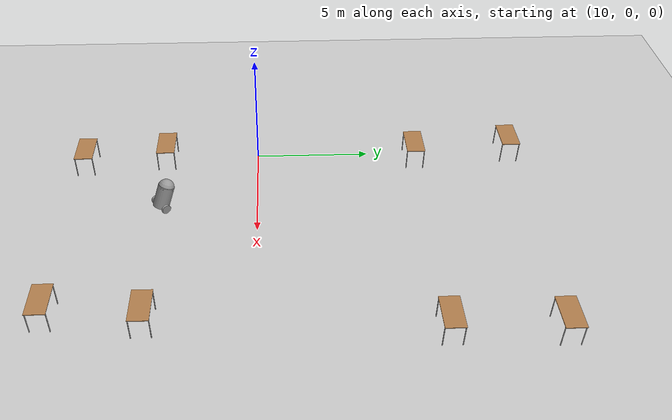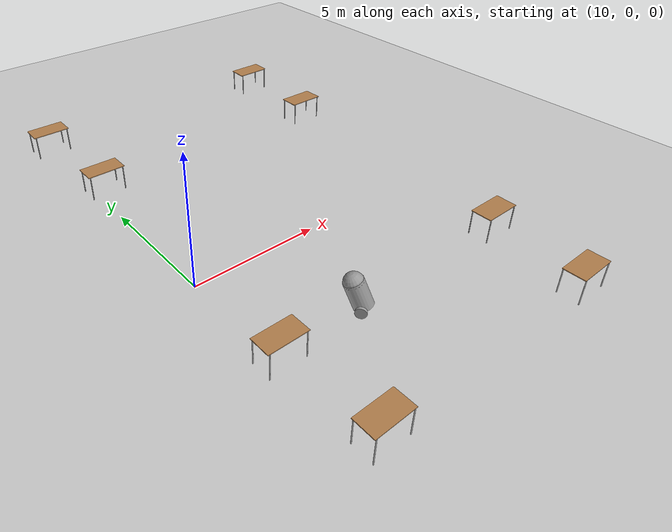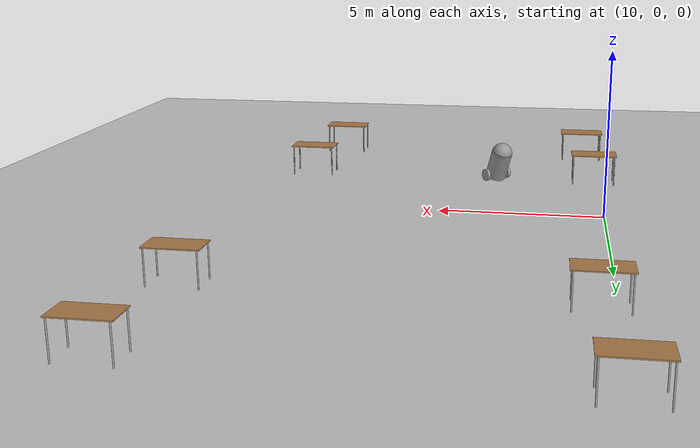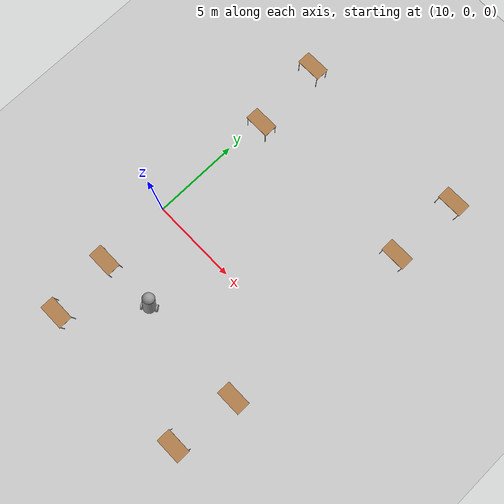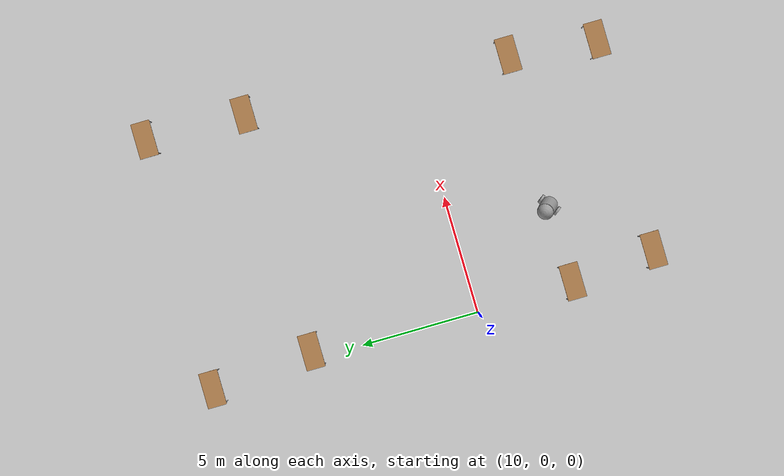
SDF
<sdf version="1.6">
 <world name="default">
  <model name="ground_plane">
   <static>1</static>
   <link name="link">
    <collision name="collision">
     <geometry><plane><normal>0 0 1</normal><size>100 100</size></plane></geometry>
     <surface><friction><ode><mu>100</mu><mu2>50</mu2></ode></friction></surface>
    </collision>
    <visual name="visual">
     <cast_shadows>0</cast_shadows>
     <geometry><plane><normal>0 0 1</normal><size>100 100</size></plane></geometry>
     <material>
      <script><uri>file://media/materials/scripts/gazebo.material</uri><name>Gazebo/Grey</name></script>
     </material>
    </visual>
   </link>
  </model>
  <model name="myRobot">
   <link name="link_1">
    <pose>-0 0.005 0.107501 0 -0 0</pose>
    <inertial>
     <mass>1</mass>
     <inertia><ixx>0.145833</ixx><ixy>0</ixy><ixz>0</ixz><iyy>0.145833</iyy><iyz>0</iyz><izz>0.125</izz></inertia>
    </inertial>
    <visual name="visual">
     <geometry><cylinder><radius>0.35</radius><length>1</length></cylinder></geometry>
     <material>
      <lighting>1</lighting>
      <script><uri>file://media/materials/scripts/gazebo.material</uri><name>Gazebo/Grey</name></script>
      <ambient>0.3 0.3 0.3 1</ambient>
      <diffuse>0.7 0.7 0.7 1</diffuse>
      <specular>0.01 0.01 0.01 1</specular>
      <emissive>0 0 0 1</emissive>
      <shader type="vertex"><normal_map>__default__</normal_map></shader>
     </material>
    </visual>
    <collision name="collision">
     <geometry><cylinder><radius>0.35</radius><length>1</length></cylinder></geometry>
     <surface>
      <friction>
       <ode><mu>1</mu><mu2>1</mu2><fdir1>0 0 0</fdir1><slip1>0</slip1><slip2>0</slip2></ode>
       <torsional>
        <coefficient>1</coefficient>
        <patch_radius>0</patch_radius>
        <surface_radius>0</surface_radius>
        <use_patch_radius>1</use_patch_radius>
        <ode><slip>0</slip></ode>
       </torsional>
      </friction>
      <bounce><restitution_coefficient>0</restitution_coefficient><threshold>1e+06</threshold></bounce>
      <contact>
       <collide_without_contact>0</collide_without_contact>
       <collide_without_contact_bitmask>1</collide_without_contact_bitmask>
       <collide_bitmask>1</collide_bitmask>
       <ode>
        <soft_cfm>0</soft_cfm>
        <soft_erp>0.2</soft_erp>
        <kp>1e+13</kp>
        <kd>1</kd>
        <max_vel>0.01</max_vel>
        <min_depth>0</min_depth>
       </ode>
       <bullet>
        <split_impulse>1</split_impulse>
        <split_impulse_penetration_threshold>-0.01</split_impulse_penetration_threshold>
        <soft_cfm>0</soft_cfm>
        <soft_erp>0.2</soft_erp>
        <kp>1e+13</kp>
        <kd>1</kd>
       </bullet>
      </contact>
     </surface>
    </collision>
   </link>
   <link name="link_2">
    <pose>-0 -0.415019 -0.322503 1.5707 -0 0</pose>
    <inertial>
     <mass>1</mass>
     <inertia><ixx>0.145833</ixx><ixy>0</ixy><ixz>0</ixz><iyy>0.145833</iyy><iyz>0</iyz><izz>0.125</izz></inertia>
    </inertial>
    <visual name="visual">
     <geometry><cylinder><radius>0.2</radius><length>0.1</length></cylinder></geometry>
     <material>
      <lighting>1</lighting>
      <script><uri>file://media/materials/scripts/gazebo.material</uri><name>Gazebo/Grey</name></script>
      <ambient>0.3 0.3 0.3 1</ambient>
      <diffuse>0.7 0.7 0.7 1</diffuse>
      <specular>0.01 0.01 0.01 1</specular>
      <emissive>0 0 0 1</emissive>
      <shader type="vertex"><normal_map>__default__</normal_map></shader>
     </material>
    </visual>
    <collision name="collision">
     <geometry><cylinder><radius>0.2</radius><length>0.1</length></cylinder></geometry>
     <surface>
      <friction>
       <ode><mu>1</mu><mu2>1</mu2><fdir1>0 0 0</fdir1><slip1>0</slip1><slip2>0</slip2></ode>
       <torsional>
        <coefficient>1</coefficient>
        <patch_radius>0</patch_radius>
        <surface_radius>0</surface_radius>
        <use_patch_radius>1</use_patch_radius>
        <ode><slip>0</slip></ode>
       </torsional>
      </friction>
      <bounce><restitution_coefficient>0</restitution_coefficient><threshold>1e+06</threshold></bounce>
      <contact>
       <collide_without_contact>0</collide_without_contact>
       <collide_without_contact_bitmask>1</collide_without_contact_bitmask>
       <collide_bitmask>1</collide_bitmask>
       <ode>
        <soft_cfm>0</soft_cfm>
        <soft_erp>0.2</soft_erp>
        <kp>1e+13</kp>
        <kd>1</kd>
        <max_vel>0.01</max_vel>
        <min_depth>0</min_depth>
       </ode>
       <bullet>
        <split_impulse>1</split_impulse>
        <split_impulse_penetration_threshold>-0.01</split_impulse_penetration_threshold>
        <soft_cfm>0</soft_cfm>
        <soft_erp>0.2</soft_erp>
        <kp>1e+13</kp>
        <kd>1</kd>
       </bullet>
      </contact>
     </surface>
    </collision>
   </link>
   <link name="link_2_clone">
    <pose>-0 0.405019 -0.322499 1.5707 -0 0</pose>
    <inertial>
     <mass>1</mass>
     <inertia><ixx>0.145833</ixx><ixy>0</ixy><ixz>0</ixz><iyy>0.145833</iyy><iyz>0</iyz><izz>0.125</izz></inertia>
    </inertial>
    <visual name="visual">
     <geometry><cylinder><radius>0.2</radius><length>0.1</length></cylinder></geometry>
     <material>
      <lighting>1</lighting>
      <script><uri>file://media/materials/scripts/gazebo.material</uri><name>Gazebo/Grey</name></script>
      <ambient>0.3 0.3 0.3 1</ambient>
      <diffuse>0.7 0.7 0.7 1</diffuse>
      <specular>0.01 0.01 0.01 1</specular>
      <emissive>0 0 0 1</emissive>
      <shader type="vertex"><normal_map>__default__</normal_map></shader>
     </material>
    </visual>
    <collision name="collision">
     <geometry><cylinder><radius>0.2</radius><length>0.1</length></cylinder></geometry>
     <surface>
      <friction>
       <ode><mu>1</mu><mu2>1</mu2><fdir1>0 0 0</fdir1><slip1>0</slip1><slip2>0</slip2></ode>
       <torsional>
        <coefficient>1</coefficient>
        <patch_radius>0</patch_radius>
        <surface_radius>0</surface_radius>
        <use_patch_radius>1</use_patch_radius>
        <ode><slip>0</slip></ode>
       </torsional>
      </friction>
      <bounce><restitution_coefficient>0</restitution_coefficient><threshold>1e+06</threshold></bounce>
      <contact>
       <collide_without_contact>0</collide_without_contact>
       <collide_without_contact_bitmask>1</collide_without_contact_bitmask>
       <collide_bitmask>1</collide_bitmask>
       <ode>
        <soft_cfm>0</soft_cfm>
        <soft_erp>0.2</soft_erp>
        <kp>1e+13</kp>
        <kd>1</kd>
        <max_vel>0.01</max_vel>
        <min_depth>0</min_depth>
       </ode>
       <bullet>
        <split_impulse>1</split_impulse>
        <split_impulse_penetration_threshold>-0.01</split_impulse_penetration_threshold>
        <soft_cfm>0</soft_cfm>
        <soft_erp>0.2</soft_erp>
        <kp>1e+13</kp>
        <kd>1</kd>
       </bullet>
      </contact>
     </surface>
    </collision>
   </link>
   <link name="link_3">
    <pose>-0 0.005 0.537501 0 -0 0</pose>
    <inertial>
     <mass>1</mass>
     <inertia><ixx>0.1</ixx><ixy>0</ixy><ixz>0</ixz><iyy>0.1</iyy><iyz>0</iyz><izz>0.1</izz></inertia>
    </inertial>
    <visual name="visual">
     <geometry><sphere><radius>0.35</radius></sphere></geometry>
     <material>
      <lighting>1</lighting>
      <script><uri>file://media/materials/scripts/gazebo.material</uri><name>Gazebo/Grey</name></script>
      <ambient>0.3 0.3 0.3 1</ambient>
      <diffuse>0.7 0.7 0.7 1</diffuse>
      <specular>0.01 0.01 0.01 1</specular>
      <emissive>0 0 0 1</emissive>
      <shader type="vertex"><normal_map>__default__</normal_map></shader>
     </material>
    </visual>
    <collision name="collision">
     <geometry><sphere><radius>0.35</radius></sphere></geometry>
     <surface>
      <friction>
       <ode><mu>1</mu><mu2>1</mu2><fdir1>0 0 0</fdir1><slip1>0</slip1><slip2>0</slip2></ode>
       <torsional>
        <coefficient>1</coefficient>
        <patch_radius>0</patch_radius>
        <surface_radius>0</surface_radius>
        <use_patch_radius>1</use_patch_radius>
        <ode><slip>0</slip></ode>
       </torsional>
      </friction>
      <bounce><restitution_coefficient>0</restitution_coefficient><threshold>1e+06</threshold></bounce>
      <contact>
       <collide_without_contact>0</collide_without_contact>
       <collide_without_contact_bitmask>1</collide_without_contact_bitmask>
       <collide_bitmask>1</collide_bitmask>
       <ode>
        <soft_cfm>0</soft_cfm>
        <soft_erp>0.2</soft_erp>
        <kp>1e+13</kp>
        <kd>1</kd>
        <max_vel>0.01</max_vel>
        <min_depth>0</min_depth>
       </ode>
       <bullet>
        <split_impulse>1</split_impulse>
        <split_impulse_penetration_threshold>-0.01</split_impulse_penetration_threshold>
        <soft_cfm>0</soft_cfm>
        <soft_erp>0.2</soft_erp>
        <kp>1e+13</kp>
        <kd>1</kd>
       </bullet>
      </contact>
     </surface>
    </collision>
   </link>
   <joint name="link_1_JOINT_1" type="revolute">
    <parent>link_1</parent>
    <child>link_2_clone</child>
    <axis>
     <xyz>0 0 1</xyz>
     <use_parent_model_frame>0</use_parent_model_frame>
     <limit>
      <lower>-1.79769e+308</lower>
      <upper>1.79769e+308</upper>
      <effort>-1</effort>
      <velocity>-1</velocity>
     </limit>
     <dynamics>
      <spring_reference>0</spring_reference>
      <spring_stiffness>0</spring_stiffness>
      <damping>0</damping>
     </dynamics>
    </axis>
    <physics>
     <ode><limit><cfm>0</cfm><erp>0.2</erp></limit><suspension><cfm>0</cfm><erp>0.2</erp></suspension></ode>
    </physics>
   </joint>
   <joint name="link_1_JOINT_2" type="revolute">
    <parent>link_1</parent>
    <child>link_3</child>
    <axis>
     <xyz>0 0 1</xyz>
     <use_parent_model_frame>0</use_parent_model_frame>
     <limit>
      <lower>-1.79769e+308</lower>
      <upper>1.79769e+308</upper>
      <effort>-1</effort>
      <velocity>-1</velocity>
     </limit>
     <dynamics>
      <spring_reference>0</spring_reference>
      <spring_stiffness>0</spring_stiffness>
      <damping>0</damping>
     </dynamics>
    </axis>
    <physics>
     <ode><limit><cfm>0</cfm><erp>0.2</erp></limit><suspension><cfm>0</cfm><erp>0.2</erp></suspension></ode>
    </physics>
   </joint>
   <joint name="link_2_JOINT_0" type="revolute">
    <parent>link_1</parent>
    <child>link_2</child>
    <axis>
     <xyz>0 0 1</xyz>
     <use_parent_model_frame>0</use_parent_model_frame>
     <limit>
      <lower>-1.79769e+308</lower>
      <upper>1.79769e+308</upper>
      <effort>-1</effort>
      <velocity>-1</velocity>
     </limit>
     <dynamics>
      <spring_reference>0</spring_reference>
      <spring_stiffness>0</spring_stiffness>
      <damping>0</damping>
     </dynamics>
    </axis>
    <physics>
     <ode><limit><cfm>0</cfm><erp>0.2</erp></limit><suspension><cfm>0</cfm><erp>0.2</erp></suspension></ode>
    </physics>
   </joint>
   <static>0</static>
   <pose>13.4088 -4.00781 0.497372 1e-06 -0.397417 -0.9245</pose>
  </model>
  <model name="table_clone_6">
   <static>1</static>
   <link name="link">
    <collision name="surface">
     <pose>0 0 1 0 -0 0</pose>
     <geometry><box><size>1.5 0.8 0.03</size></box></geometry>
     <surface><friction><ode><mu>0.6</mu><mu2>0.6</mu2></ode></friction></surface>
    </collision>
    <visual name="visual1">
     <pose>0 0 1 0 -0 0</pose>
     <geometry><box><size>1.5 0.8 0.03</size></box></geometry>
     <material>
      <script><uri>file://media/materials/scripts/gazebo.material</uri><name>Gazebo/Wood</name></script>
     </material>
    </visual>
    <collision name="front_left_leg">
     <pose>0.68 0.38 0.5 0 -0 0</pose>
     <geometry><cylinder><radius>0.02</radius><length>1</length></cylinder></geometry>
    </collision>
    <visual name="front_left_leg">
     <pose>0.68 0.38 0.5 0 -0 0</pose>
     <geometry><cylinder><radius>0.02</radius><length>1</length></cylinder></geometry>
     <material>
      <script><uri>file://media/materials/scripts/gazebo.material</uri><name>Gazebo/Grey</name></script>
     </material>
    </visual>
    <collision name="front_right_leg">
     <pose>0.68 -0.38 0.5 0 -0 0</pose>
     <geometry><cylinder><radius>0.02</radius><length>1</length></cylinder></geometry>
    </collision>
    <visual name="front_right_leg">
     <pose>0.68 -0.38 0.5 0 -0 0</pose>
     <geometry><cylinder><radius>0.02</radius><length>1</length></cylinder></geometry>
     <material>
      <script><uri>file://media/materials/scripts/gazebo.material</uri><name>Gazebo/Grey</name></script>
     </material>
    </visual>
    <collision name="back_right_leg">
     <pose>-0.68 -0.38 0.5 0 -0 0</pose>
     <geometry><cylinder><radius>0.02</radius><length>1</length></cylinder></geometry>
    </collision>
    <visual name="back_right_leg">
     <pose>-0.68 -0.38 0.5 0 -0 0</pose>
     <geometry><cylinder><radius>0.02</radius><length>1</length></cylinder></geometry>
     <material>
      <script><uri>file://media/materials/scripts/gazebo.material</uri><name>Gazebo/Grey</name></script>
     </material>
    </visual>
    <collision name="back_left_leg">
     <pose>-0.68 0.38 0.5 0 -0 0</pose>
     <geometry><cylinder><radius>0.02</radius><length>1</length></cylinder></geometry>
    </collision>
    <visual name="back_left_leg">
     <pose>-0.68 0.38 0.5 0 -0 0</pose>
     <geometry><cylinder><radius>0.02</radius><length>1</length></cylinder></geometry>
     <material>
      <script><uri>file://media/materials/scripts/gazebo.material</uri><name>Gazebo/Grey</name></script>
     </material>
    </visual>
   </link>
   <pose>20.7432 11.2616 0 0 -0 0</pose>
  </model>
  <model name="table_clone_7">
   <static>1</static>
   <link name="link">
    <collision name="surface">
     <pose>0 0 1 0 -0 0</pose>
     <geometry><box><size>1.5 0.8 0.03</size></box></geometry>
     <surface><friction><ode><mu>0.6</mu><mu2>0.6</mu2></ode></friction></surface>
    </collision>
    <visual name="visual1">
     <pose>0 0 1 0 -0 0</pose>
     <geometry><box><size>1.5 0.8 0.03</size></box></geometry>
     <material>
      <script><uri>file://media/materials/scripts/gazebo.material</uri><name>Gazebo/Wood</name></script>
     </material>
    </visual>
    <collision name="front_left_leg">
     <pose>0.68 0.38 0.5 0 -0 0</pose>
     <geometry><cylinder><radius>0.02</radius><length>1</length></cylinder></geometry>
    </collision>
    <visual name="front_left_leg">
     <pose>0.68 0.38 0.5 0 -0 0</pose>
     <geometry><cylinder><radius>0.02</radius><length>1</length></cylinder></geometry>
     <material>
      <script><uri>file://media/materials/scripts/gazebo.material</uri><name>Gazebo/Grey</name></script>
     </material>
    </visual>
    <collision name="front_right_leg">
     <pose>0.68 -0.38 0.5 0 -0 0</pose>
     <geometry><cylinder><radius>0.02</radius><length>1</length></cylinder></geometry>
    </collision>
    <visual name="front_right_leg">
     <pose>0.68 -0.38 0.5 0 -0 0</pose>
     <geometry><cylinder><radius>0.02</radius><length>1</length></cylinder></geometry>
     <material>
      <script><uri>file://media/materials/scripts/gazebo.material</uri><name>Gazebo/Grey</name></script>
     </material>
    </visual>
    <collision name="back_right_leg">
     <pose>-0.68 -0.38 0.5 0 -0 0</pose>
     <geometry><cylinder><radius>0.02</radius><length>1</length></cylinder></geometry>
    </collision>
    <visual name="back_right_leg">
     <pose>-0.68 -0.38 0.5 0 -0 0</pose>
     <geometry><cylinder><radius>0.02</radius><length>1</length></cylinder></geometry>
     <material>
      <script><uri>file://media/materials/scripts/gazebo.material</uri><name>Gazebo/Grey</name></script>
     </material>
    </visual>
    <collision name="back_left_leg">
     <pose>-0.68 0.38 0.5 0 -0 0</pose>
     <geometry><cylinder><radius>0.02</radius><length>1</length></cylinder></geometry>
    </collision>
    <visual name="back_left_leg">
     <pose>-0.68 0.38 0.5 0 -0 0</pose>
     <geometry><cylinder><radius>0.02</radius><length>1</length></cylinder></geometry>
     <material>
      <script><uri>file://media/materials/scripts/gazebo.material</uri><name>Gazebo/Grey</name></script>
     </material>
    </visual>
   </link>
   <pose>20.6055 7.0349 0 0 -0 0</pose>
  </model>
  <model name="table_clone_8">
   <static>1</static>
   <link name="link">
    <collision name="surface">
     <pose>0 0 1 0 -0 0</pose>
     <geometry><box><size>1.5 0.8 0.03</size></box></geometry>
     <surface><friction><ode><mu>0.6</mu><mu2>0.6</mu2></ode></friction></surface>
    </collision>
    <visual name="visual1">
     <pose>0 0 1 0 -0 0</pose>
     <geometry><box><size>1.5 0.8 0.03</size></box></geometry>
     <material>
      <script><uri>file://media/materials/scripts/gazebo.material</uri><name>Gazebo/Wood</name></script>
     </material>
    </visual>
    <collision name="front_left_leg">
     <pose>0.68 0.38 0.5 0 -0 0</pose>
     <geometry><cylinder><radius>0.02</radius><length>1</length></cylinder></geometry>
    </collision>
    <visual name="front_left_leg">
     <pose>0.68 0.38 0.5 0 -0 0</pose>
     <geometry><cylinder><radius>0.02</radius><length>1</length></cylinder></geometry>
     <material>
      <script><uri>file://media/materials/scripts/gazebo.material</uri><name>Gazebo/Grey</name></script>
     </material>
    </visual>
    <collision name="front_right_leg">
     <pose>0.68 -0.38 0.5 0 -0 0</pose>
     <geometry><cylinder><radius>0.02</radius><length>1</length></cylinder></geometry>
    </collision>
    <visual name="front_right_leg">
     <pose>0.68 -0.38 0.5 0 -0 0</pose>
     <geometry><cylinder><radius>0.02</radius><length>1</length></cylinder></geometry>
     <material>
      <script><uri>file://media/materials/scripts/gazebo.material</uri><name>Gazebo/Grey</name></script>
     </material>
    </visual>
    <collision name="back_right_leg">
     <pose>-0.68 -0.38 0.5 0 -0 0</pose>
     <geometry><cylinder><radius>0.02</radius><length>1</length></cylinder></geometry>
    </collision>
    <visual name="back_right_leg">
     <pose>-0.68 -0.38 0.5 0 -0 0</pose>
     <geometry><cylinder><radius>0.02</radius><length>1</length></cylinder></geometry>
     <material>
      <script><uri>file://media/materials/scripts/gazebo.material</uri><name>Gazebo/Grey</name></script>
     </material>
    </visual>
    <collision name="back_left_leg">
     <pose>-0.68 0.38 0.5 0 -0 0</pose>
     <geometry><cylinder><radius>0.02</radius><length>1</length></cylinder></geometry>
    </collision>
    <visual name="back_left_leg">
     <pose>-0.68 0.38 0.5 0 -0 0</pose>
     <geometry><cylinder><radius>0.02</radius><length>1</length></cylinder></geometry>
     <material>
      <script><uri>file://media/materials/scripts/gazebo.material</uri><name>Gazebo/Grey</name></script>
     </material>
    </visual>
   </link>
   <pose>10.054 11.4384 0 0 -0 0</pose>
  </model>
  <model name="table_clone_9">
   <static>1</static>
   <link name="link">
    <collision name="surface">
     <pose>0 0 1 0 -0 0</pose>
     <geometry><box><size>1.5 0.8 0.03</size></box></geometry>
     <surface><friction><ode><mu>0.6</mu><mu2>0.6</mu2></ode></friction></surface>
    </collision>
    <visual name="visual1">
     <pose>0 0 1 0 -0 0</pose>
     <geometry><box><size>1.5 0.8 0.03</size></box></geometry>
     <material>
      <script><uri>file://media/materials/scripts/gazebo.material</uri><name>Gazebo/Wood</name></script>
     </material>
    </visual>
    <collision name="front_left_leg">
     <pose>0.68 0.38 0.5 0 -0 0</pose>
     <geometry><cylinder><radius>0.02</radius><length>1</length></cylinder></geometry>
    </collision>
    <visual name="front_left_leg">
     <pose>0.68 0.38 0.5 0 -0 0</pose>
     <geometry><cylinder><radius>0.02</radius><length>1</length></cylinder></geometry>
     <material>
      <script><uri>file://media/materials/scripts/gazebo.material</uri><name>Gazebo/Grey</name></script>
     </material>
    </visual>
    <collision name="front_right_leg">
     <pose>0.68 -0.38 0.5 0 -0 0</pose>
     <geometry><cylinder><radius>0.02</radius><length>1</length></cylinder></geometry>
    </collision>
    <visual name="front_right_leg">
     <pose>0.68 -0.38 0.5 0 -0 0</pose>
     <geometry><cylinder><radius>0.02</radius><length>1</length></cylinder></geometry>
     <material>
      <script><uri>file://media/materials/scripts/gazebo.material</uri><name>Gazebo/Grey</name></script>
     </material>
    </visual>
    <collision name="back_right_leg">
     <pose>-0.68 -0.38 0.5 0 -0 0</pose>
     <geometry><cylinder><radius>0.02</radius><length>1</length></cylinder></geometry>
    </collision>
    <visual name="back_right_leg">
     <pose>-0.68 -0.38 0.5 0 -0 0</pose>
     <geometry><cylinder><radius>0.02</radius><length>1</length></cylinder></geometry>
     <material>
      <script><uri>file://media/materials/scripts/gazebo.material</uri><name>Gazebo/Grey</name></script>
     </material>
    </visual>
    <collision name="back_left_leg">
     <pose>-0.68 0.38 0.5 0 -0 0</pose>
     <geometry><cylinder><radius>0.02</radius><length>1</length></cylinder></geometry>
    </collision>
    <visual name="back_left_leg">
     <pose>-0.68 0.38 0.5 0 -0 0</pose>
     <geometry><cylinder><radius>0.02</radius><length>1</length></cylinder></geometry>
     <material>
      <script><uri>file://media/materials/scripts/gazebo.material</uri><name>Gazebo/Grey</name></script>
     </material>
    </visual>
   </link>
   <pose>10.4203 7.08275 0 0 -0 0</pose>
  </model>
  <model name="table_clone_10">
   <static>1</static>
   <link name="link">
    <collision name="surface">
     <pose>0 0 1 0 -0 0</pose>
     <geometry><box><size>1.5 0.8 0.03</size></box></geometry>
     <surface><friction><ode><mu>0.6</mu><mu2>0.6</mu2></ode></friction></surface>
    </collision>
    <visual name="visual1">
     <pose>0 0 1 0 -0 0</pose>
     <geometry><box><size>1.5 0.8 0.03</size></box></geometry>
     <material>
      <script><uri>file://media/materials/scripts/gazebo.material</uri><name>Gazebo/Wood</name></script>
     </material>
    </visual>
    <collision name="front_left_leg">
     <pose>0.68 0.38 0.5 0 -0 0</pose>
     <geometry><cylinder><radius>0.02</radius><length>1</length></cylinder></geometry>
    </collision>
    <visual name="front_left_leg">
     <pose>0.68 0.38 0.5 0 -0 0</pose>
     <geometry><cylinder><radius>0.02</radius><length>1</length></cylinder></geometry>
     <material>
      <script><uri>file://media/materials/scripts/gazebo.material</uri><name>Gazebo/Grey</name></script>
     </material>
    </visual>
    <collision name="front_right_leg">
     <pose>0.68 -0.38 0.5 0 -0 0</pose>
     <geometry><cylinder><radius>0.02</radius><length>1</length></cylinder></geometry>
    </collision>
    <visual name="front_right_leg">
     <pose>0.68 -0.38 0.5 0 -0 0</pose>
     <geometry><cylinder><radius>0.02</radius><length>1</length></cylinder></geometry>
     <material>
      <script><uri>file://media/materials/scripts/gazebo.material</uri><name>Gazebo/Grey</name></script>
     </material>
    </visual>
    <collision name="back_right_leg">
     <pose>-0.68 -0.38 0.5 0 -0 0</pose>
     <geometry><cylinder><radius>0.02</radius><length>1</length></cylinder></geometry>
    </collision>
    <visual name="back_right_leg">
     <pose>-0.68 -0.38 0.5 0 -0 0</pose>
     <geometry><cylinder><radius>0.02</radius><length>1</length></cylinder></geometry>
     <material>
      <script><uri>file://media/materials/scripts/gazebo.material</uri><name>Gazebo/Grey</name></script>
     </material>
    </visual>
    <collision name="back_left_leg">
     <pose>-0.68 0.38 0.5 0 -0 0</pose>
     <geometry><cylinder><radius>0.02</radius><length>1</length></cylinder></geometry>
    </collision>
    <visual name="back_left_leg">
     <pose>-0.68 0.38 0.5 0 -0 0</pose>
     <geometry><cylinder><radius>0.02</radius><length>1</length></cylinder></geometry>
     <material>
      <script><uri>file://media/materials/scripts/gazebo.material</uri><name>Gazebo/Grey</name></script>
     </material>
    </visual>
   </link>
   <pose>19.9302 -4.1507 0 0 -0 0</pose>
  </model>
  <model name="table_clone_11">
   <static>1</static>
   <link name="link">
    <collision name="surface">
     <pose>0 0 1 0 -0 0</pose>
     <geometry><box><size>1.5 0.8 0.03</size></box></geometry>
     <surface><friction><ode><mu>0.6</mu><mu2>0.6</mu2></ode></friction></surface>
    </collision>
    <visual name="visual1">
     <pose>0 0 1 0 -0 0</pose>
     <geometry><box><size>1.5 0.8 0.03</size></box></geometry>
     <material>
      <script><uri>file://media/materials/scripts/gazebo.material</uri><name>Gazebo/Wood</name></script>
     </material>
    </visual>
    <collision name="front_left_leg">
     <pose>0.68 0.38 0.5 0 -0 0</pose>
     <geometry><cylinder><radius>0.02</radius><length>1</length></cylinder></geometry>
    </collision>
    <visual name="front_left_leg">
     <pose>0.68 0.38 0.5 0 -0 0</pose>
     <geometry><cylinder><radius>0.02</radius><length>1</length></cylinder></geometry>
     <material>
      <script><uri>file://media/materials/scripts/gazebo.material</uri><name>Gazebo/Grey</name></script>
     </material>
    </visual>
    <collision name="front_right_leg">
     <pose>0.68 -0.38 0.5 0 -0 0</pose>
     <geometry><cylinder><radius>0.02</radius><length>1</length></cylinder></geometry>
    </collision>
    <visual name="front_right_leg">
     <pose>0.68 -0.38 0.5 0 -0 0</pose>
     <geometry><cylinder><radius>0.02</radius><length>1</length></cylinder></geometry>
     <material>
      <script><uri>file://media/materials/scripts/gazebo.material</uri><name>Gazebo/Grey</name></script>
     </material>
    </visual>
    <collision name="back_right_leg">
     <pose>-0.68 -0.38 0.5 0 -0 0</pose>
     <geometry><cylinder><radius>0.02</radius><length>1</length></cylinder></geometry>
    </collision>
    <visual name="back_right_leg">
     <pose>-0.68 -0.38 0.5 0 -0 0</pose>
     <geometry><cylinder><radius>0.02</radius><length>1</length></cylinder></geometry>
     <material>
      <script><uri>file://media/materials/scripts/gazebo.material</uri><name>Gazebo/Grey</name></script>
     </material>
    </visual>
    <collision name="back_left_leg">
     <pose>-0.68 0.38 0.5 0 -0 0</pose>
     <geometry><cylinder><radius>0.02</radius><length>1</length></cylinder></geometry>
    </collision>
    <visual name="back_left_leg">
     <pose>-0.68 0.38 0.5 0 -0 0</pose>
     <geometry><cylinder><radius>0.02</radius><length>1</length></cylinder></geometry>
     <material>
      <script><uri>file://media/materials/scripts/gazebo.material</uri><name>Gazebo/Grey</name></script>
     </material>
    </visual>
   </link>
   <pose>19.5229 -7.85985 0 0 -0 0</pose>
  </model>
  <model name="table_clone_12">
   <static>1</static>
   <link name="link">
    <collision name="surface">
     <pose>0 0 1 0 -0 0</pose>
     <geometry><box><size>1.5 0.8 0.03</size></box></geometry>
     <surface><friction><ode><mu>0.6</mu><mu2>0.6</mu2></ode></friction></surface>
    </collision>
    <visual name="visual1">
     <pose>0 0 1 0 -0 0</pose>
     <geometry><box><size>1.5 0.8 0.03</size></box></geometry>
     <material>
      <script><uri>file://media/materials/scripts/gazebo.material</uri><name>Gazebo/Wood</name></script>
     </material>
    </visual>
    <collision name="front_left_leg">
     <pose>0.68 0.38 0.5 0 -0 0</pose>
     <geometry><cylinder><radius>0.02</radius><length>1</length></cylinder></geometry>
    </collision>
    <visual name="front_left_leg">
     <pose>0.68 0.38 0.5 0 -0 0</pose>
     <geometry><cylinder><radius>0.02</radius><length>1</length></cylinder></geometry>
     <material>
      <script><uri>file://media/materials/scripts/gazebo.material</uri><name>Gazebo/Grey</name></script>
     </material>
    </visual>
    <collision name="front_right_leg">
     <pose>0.68 -0.38 0.5 0 -0 0</pose>
     <geometry><cylinder><radius>0.02</radius><length>1</length></cylinder></geometry>
    </collision>
    <visual name="front_right_leg">
     <pose>0.68 -0.38 0.5 0 -0 0</pose>
     <geometry><cylinder><radius>0.02</radius><length>1</length></cylinder></geometry>
     <material>
      <script><uri>file://media/materials/scripts/gazebo.material</uri><name>Gazebo/Grey</name></script>
     </material>
    </visual>
    <collision name="back_right_leg">
     <pose>-0.68 -0.38 0.5 0 -0 0</pose>
     <geometry><cylinder><radius>0.02</radius><length>1</length></cylinder></geometry>
    </collision>
    <visual name="back_right_leg">
     <pose>-0.68 -0.38 0.5 0 -0 0</pose>
     <geometry><cylinder><radius>0.02</radius><length>1</length></cylinder></geometry>
     <material>
      <script><uri>file://media/materials/scripts/gazebo.material</uri><name>Gazebo/Grey</name></script>
     </material>
    </visual>
    <collision name="back_left_leg">
     <pose>-0.68 0.38 0.5 0 -0 0</pose>
     <geometry><cylinder><radius>0.02</radius><length>1</length></cylinder></geometry>
    </collision>
    <visual name="back_left_leg">
     <pose>-0.68 0.38 0.5 0 -0 0</pose>
     <geometry><cylinder><radius>0.02</radius><length>1</length></cylinder></geometry>
     <material>
      <script><uri>file://media/materials/scripts/gazebo.material</uri><name>Gazebo/Grey</name></script>
     </material>
    </visual>
   </link>
   <pose>10.1852 -4.10657 0 0 -0 0</pose>
  </model>
  <model name="table_clone_13">
   <static>1</static>
   <link name="link">
    <collision name="surface">
     <pose>0 0 1 0 -0 0</pose>
     <geometry><box><size>1.5 0.8 0.03</size></box></geometry>
     <surface><friction><ode><mu>0.6</mu><mu2>0.6</mu2></ode></friction></surface>
    </collision>
    <visual name="visual1">
     <pose>0 0 1 0 -0 0</pose>
     <geometry><box><size>1.5 0.8 0.03</size></box></geometry>
     <material>
      <script><uri>file://media/materials/scripts/gazebo.material</uri><name>Gazebo/Wood</name></script>
     </material>
    </visual>
    <collision name="front_left_leg">
     <pose>0.68 0.38 0.5 0 -0 0</pose>
     <geometry><cylinder><radius>0.02</radius><length>1</length></cylinder></geometry>
    </collision>
    <visual name="front_left_leg">
     <pose>0.68 0.38 0.5 0 -0 0</pose>
     <geometry><cylinder><radius>0.02</radius><length>1</length></cylinder></geometry>
     <material>
      <script><uri>file://media/materials/scripts/gazebo.material</uri><name>Gazebo/Grey</name></script>
     </material>
    </visual>
    <collision name="front_right_leg">
     <pose>0.68 -0.38 0.5 0 -0 0</pose>
     <geometry><cylinder><radius>0.02</radius><length>1</length></cylinder></geometry>
    </collision>
    <visual name="front_right_leg">
     <pose>0.68 -0.38 0.5 0 -0 0</pose>
     <geometry><cylinder><radius>0.02</radius><length>1</length></cylinder></geometry>
     <material>
      <script><uri>file://media/materials/scripts/gazebo.material</uri><name>Gazebo/Grey</name></script>
     </material>
    </visual>
    <collision name="back_right_leg">
     <pose>-0.68 -0.38 0.5 0 -0 0</pose>
     <geometry><cylinder><radius>0.02</radius><length>1</length></cylinder></geometry>
    </collision>
    <visual name="back_right_leg">
     <pose>-0.68 -0.38 0.5 0 -0 0</pose>
     <geometry><cylinder><radius>0.02</radius><length>1</length></cylinder></geometry>
     <material>
      <script><uri>file://media/materials/scripts/gazebo.material</uri><name>Gazebo/Grey</name></script>
     </material>
    </visual>
    <collision name="back_left_leg">
     <pose>-0.68 0.38 0.5 0 -0 0</pose>
     <geometry><cylinder><radius>0.02</radius><length>1</length></cylinder></geometry>
    </collision>
    <visual name="back_left_leg">
     <pose>-0.68 0.38 0.5 0 -0 0</pose>
     <geometry><cylinder><radius>0.02</radius><length>1</length></cylinder></geometry>
     <material>
      <script><uri>file://media/materials/scripts/gazebo.material</uri><name>Gazebo/Grey</name></script>
     </material>
    </visual>
   </link>
   <pose>10.5049 -7.6877 0 0 -0 0</pose>
  </model>
 </world>
</sdf>
